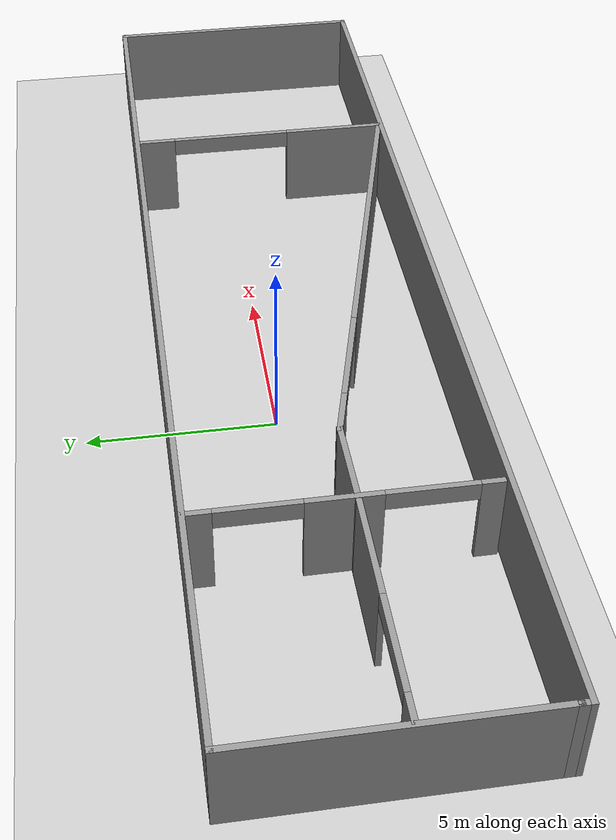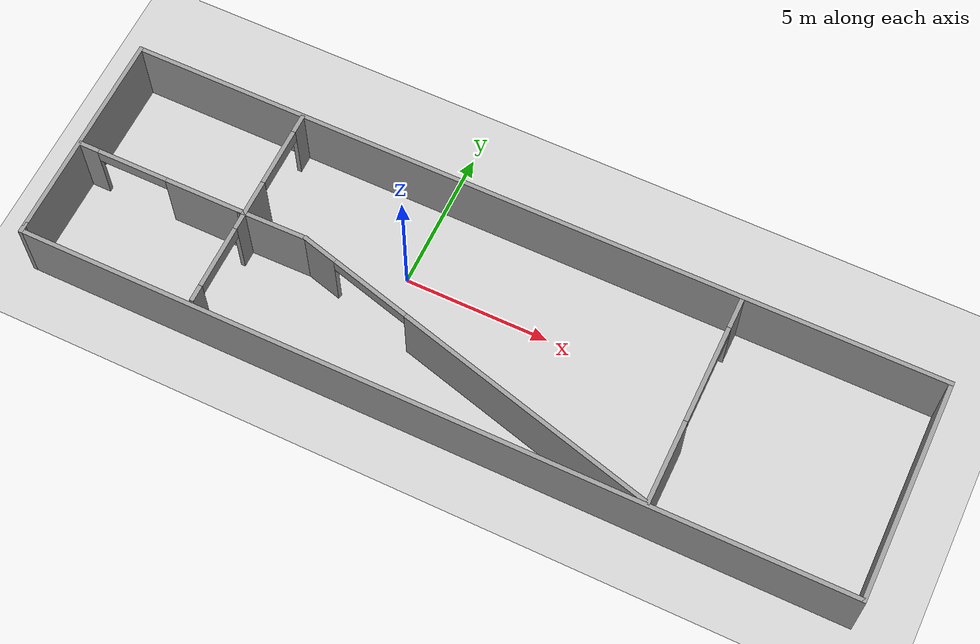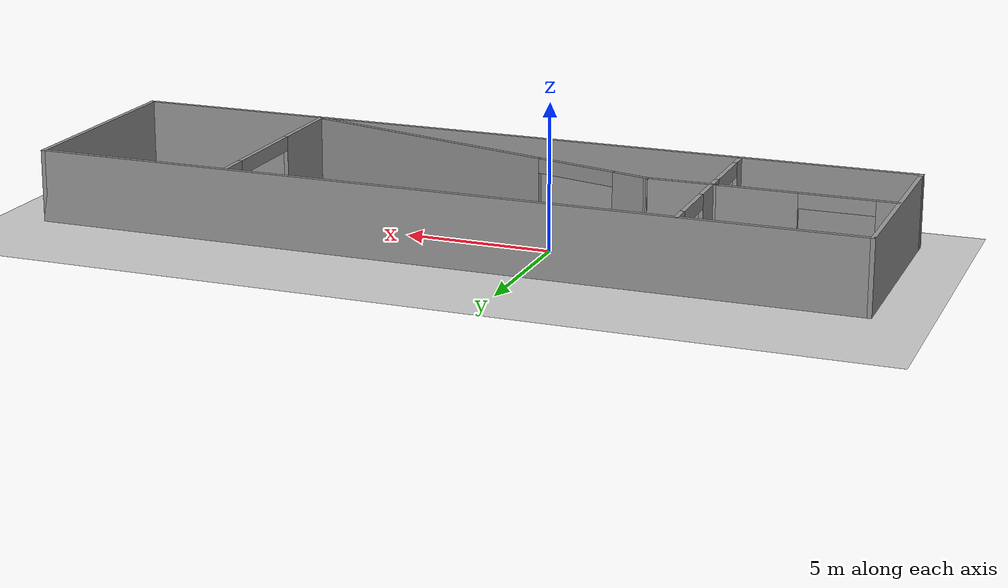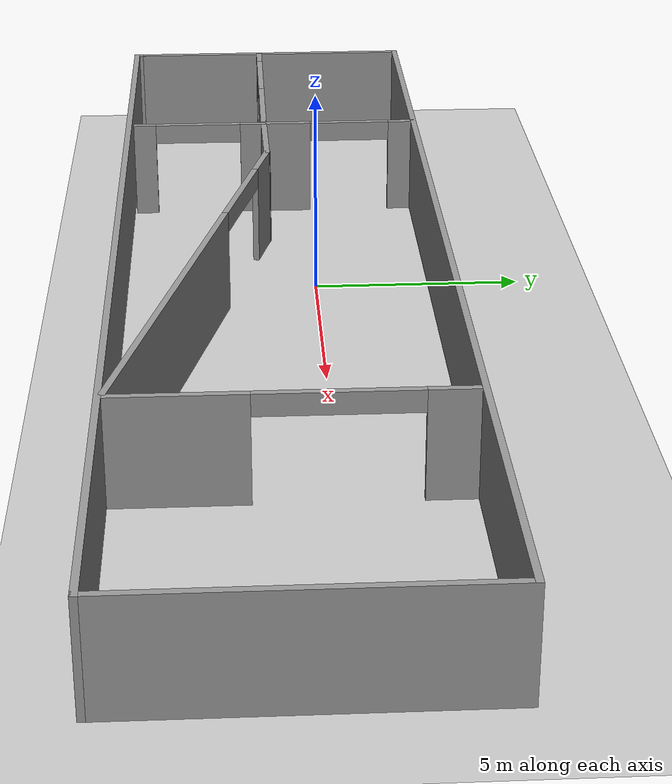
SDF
<sdf version="1.7">
 <world name="default">
  <light name="sun" type="directional">
   <pose>0 0 10 0 -0 0</pose>
   <diffuse>0.8 0.8 0.8 1</diffuse>
   <specular>0.2 0.2 0.2 1</specular>
   <attenuation>
    <range>1000</range>
    <constant>0.9</constant>
    <linear>0.01</linear>
    <quadratic>0.001</quadratic>
   </attenuation>
   <direction>-0.5 0.1 -0.9</direction>
   <spot><inner_angle>0</inner_angle><outer_angle>0</outer_angle><falloff>0</falloff></spot>
  </light>
  <model name="ground_plane">
   <static>1</static>
   <link name="link">
    <collision name="collision">
     <geometry><plane><normal>0 0 1</normal><size>100 100</size></plane></geometry>
     <surface>
      <contact><collide_bitmask>65535</collide_bitmask></contact>
      <friction><ode><mu>100</mu><mu2>50</mu2></ode></friction>
     </surface>
    </collision>
    <visual name="visual">
     <cast_shadows>0</cast_shadows>
     <geometry><plane><normal>0 0 1</normal><size>100 100</size></plane></geometry>
     <material>
      <script><uri>file://media/materials/scripts/gazebo.material</uri><name>Gazebo/Grey</name></script>
     </material>
    </visual>
   </link>
  </model>
  <gravity>0 0 -9.8</gravity>
  <magnetic_field>6e-06 2.3e-05 -4.2e-05</magnetic_field>
  <atmosphere type="adiabatic"/>
  <physics type="ode">
   <max_step_size>0.001</max_step_size>
   <real_time_factor>1</real_time_factor>
   <real_time_update_rate>1000</real_time_update_rate>
  </physics>
  <scene><ambient>0.4 0.4 0.4 1</ambient><background>0.7 0.7 0.7 1</background><shadows>1</shadows></scene>
  <spherical_coordinates>
   <surface_model>EARTH_WGS84</surface_model>
   <latitude_deg>0</latitude_deg>
   <longitude_deg>0</longitude_deg>
   <elevation>0</elevation>
   <heading_deg>0</heading_deg>
  </spherical_coordinates>
  <model name="world">
   <pose>2.98833 -0.945062 0 0 -0 0</pose>
   <link name="Wall_0">
    <collision name="Wall_0_Collision">
     <geometry><box><size>7.5 0.15 2.5</size></box></geometry>
     <pose>0 0 1.25 0 -0 0</pose>
    </collision>
    <visual name="Wall_0_Visual">
     <pose>0 0 1.25 0 -0 0</pose>
     <geometry><box><size>7.5 0.15 2.5</size></box></geometry>
     <material>
      <script><uri>file://media/materials/scripts/gazebo.material</uri><name>Gazebo/Grey</name></script>
      <ambient>1 1 1 1</ambient>
     </material>
     <meta><layer>0</layer></meta>
    </visual>
    <pose>-14.175 0.125 0 0 -0 1.5708</pose>
   </link>
   <link name="Wall_16">
    <pose>0.650154 -1.94124 0 0 -0 -0.261799</pose>
    <visual name="Wall_16_Visual_0">
     <pose>-6.20721 0 1.25 0 -0 0</pose>
     <geometry><box><size>1.33558 0.15 2.5</size></box></geometry>
     <material>
      <script><uri>file://media/materials/scripts/gazebo.material</uri><name>Gazebo/Grey</name></script>
      <ambient>1 1 1 1</ambient>
     </material>
     <meta><layer>0</layer></meta>
    </visual>
    <collision name="Wall_16_Collision_0">
     <geometry><box><size>1.33558 0.15 2.5</size></box></geometry>
     <pose>-6.20721 0 1.25 0 -0 0</pose>
    </collision>
    <visual name="Wall_16_Visual_1">
     <pose>2.13176 0 1.25 0 -0 0</pose>
     <geometry><box><size>9.48647 0.15 2.5</size></box></geometry>
     <material>
      <script><uri>file://media/materials/scripts/gazebo.material</uri><name>Gazebo/Grey</name></script>
      <ambient>1 1 1 1</ambient>
     </material>
     <meta><layer>0</layer></meta>
    </visual>
    <collision name="Wall_16_Collision_1">
     <geometry><box><size>9.48647 0.15 2.5</size></box></geometry>
     <pose>2.13176 0 1.25 0 -0 0</pose>
    </collision>
    <visual name="Wall_16_Visual_2">
     <pose>-4.07545 0 2.25 0 -0 0</pose>
     <geometry><box><size>2.92795 0.15 0.5</size></box></geometry>
     <material>
      <script><uri>file://media/materials/scripts/gazebo.material</uri><name>Gazebo/Grey</name></script>
      <ambient>1 1 1 1</ambient>
     </material>
     <meta><layer>0</layer></meta>
    </visual>
    <collision name="Wall_16_Collision_2">
     <geometry><box><size>2.92795 0.15 0.5</size></box></geometry>
     <pose>-4.07545 0 2.25 0 -0 0</pose>
    </collision>
   </link>
   <link name="Wall_19">
    <pose>7.3404 -0.025763 0 0 -0 -1.5708</pose>
    <visual name="Wall_19_Visual_0">
     <pose>-3.21098 0 1.25 0 -0 0</pose>
     <geometry><box><size>1.07804 0.15 2.5</size></box></geometry>
     <material>
      <script><uri>file://media/materials/scripts/gazebo.material</uri><name>Gazebo/Grey</name></script>
      <ambient>1 1 1 1</ambient>
     </material>
     <meta><layer>0</layer></meta>
    </visual>
    <collision name="Wall_19_Collision_0">
     <geometry><box><size>1.07804 0.15 2.5</size></box></geometry>
     <pose>-3.21098 0 1.25 0 -0 0</pose>
    </collision>
    <visual name="Wall_19_Visual_1">
     <pose>2.27381 0 1.25 0 -0 0</pose>
     <geometry><box><size>2.95239 0.15 2.5</size></box></geometry>
     <material>
      <script><uri>file://media/materials/scripts/gazebo.material</uri><name>Gazebo/Grey</name></script>
      <ambient>1 1 1 1</ambient>
     </material>
     <meta><layer>0</layer></meta>
    </visual>
    <collision name="Wall_19_Collision_1">
     <geometry><box><size>2.95239 0.15 2.5</size></box></geometry>
     <pose>2.27381 0 1.25 0 -0 0</pose>
    </collision>
    <visual name="Wall_19_Visual_2">
     <pose>-0.937175 0 2.25 0 -0 0</pose>
     <geometry><box><size>3.46958 0.15 0.5</size></box></geometry>
     <material>
      <script><uri>file://media/materials/scripts/gazebo.material</uri><name>Gazebo/Grey</name></script>
      <ambient>1 1 1 1</ambient>
     </material>
     <meta><layer>0</layer></meta>
    </visual>
    <collision name="Wall_19_Collision_2">
     <geometry><box><size>3.46958 0.15 0.5</size></box></geometry>
     <pose>-0.937175 0 2.25 0 -0 0</pose>
    </collision>
   </link>
   <link name="Wall_2">
    <collision name="Wall_2_Collision">
     <geometry><box><size>28.5 0.15 2.5</size></box></geometry>
     <pose>0 0 1.25 0 -0 0</pose>
    </collision>
    <visual name="Wall_2_Visual">
     <pose>0 0 1.25 0 -0 0</pose>
     <geometry><box><size>28.5 0.15 2.5</size></box></geometry>
     <material>
      <script><uri>file://media/materials/scripts/gazebo.material</uri><name>Gazebo/Grey</name></script>
      <ambient>1 1 1 1</ambient>
     </material>
     <meta><layer>0</layer></meta>
    </visual>
    <pose>0 3.8 0 0 -0 0</pose>
   </link>
   <link name="Wall_21">
    <collision name="Wall_21_Collision">
     <geometry><box><size>2.49492 0.15 2.5</size></box></geometry>
     <pose>0 0 1.25 0 -0 0</pose>
    </collision>
    <visual name="Wall_21_Visual">
     <pose>0 0 1.25 0 -0 0</pose>
     <geometry><box><size>2.49492 0.15 2.5</size></box></geometry>
     <material>
      <script><uri>file://media/materials/scripts/gazebo.material</uri><name>Gazebo/Grey</name></script>
      <ambient>1 1 1 1</ambient>
     </material>
     <meta><layer>0</layer></meta>
    </visual>
    <pose>-7.0905 -0.196569 0 0 -0 -3.12855</pose>
   </link>
   <link name="Wall_3">
    <collision name="Wall_3_Collision">
     <geometry><box><size>7.75 0.15 2.5</size></box></geometry>
     <pose>0 0 1.25 0 -0 0</pose>
    </collision>
    <visual name="Wall_3_Visual">
     <pose>0 0 1.25 0 -0 0</pose>
     <geometry><box><size>7.75 0.15 2.5</size></box></geometry>
     <material>
      <script><uri>file://media/materials/scripts/gazebo.material</uri><name>Gazebo/Grey</name></script>
      <ambient>1 1 1 1</ambient>
     </material>
     <meta><layer>0</layer></meta>
    </visual>
    <pose>14.175 0 0 0 -0 -1.5708</pose>
   </link>
   <link name="Wall_4">
    <collision name="Wall_4_Collision">
     <geometry><box><size>28.5 0.15 2.5</size></box></geometry>
     <pose>0 0 1.25 0 -0 0</pose>
    </collision>
    <visual name="Wall_4_Visual">
     <pose>0 0 1.25 0 -0 0</pose>
     <geometry><box><size>28.5 0.15 2.5</size></box></geometry>
     <material>
      <script><uri>file://media/materials/scripts/gazebo.material</uri><name>Gazebo/Grey</name></script>
      <ambient>1 1 1 1</ambient>
     </material>
     <meta><layer>0</layer></meta>
    </visual>
    <pose>0 -3.8 0 0 -0 3.14159</pose>
   </link>
   <link name="Wall_5">
    <collision name="Wall_5_Collision">
     <geometry><box><size>0.4 0.15 2.5</size></box></geometry>
     <pose>0 0 1.25 0 -0 0</pose>
    </collision>
    <visual name="Wall_5_Visual">
     <pose>0 0 1.25 0 -0 0</pose>
     <geometry><box><size>0.4 0.15 2.5</size></box></geometry>
     <material>
      <script><uri>file://media/materials/scripts/gazebo.material</uri><name>Gazebo/Grey</name></script>
      <ambient>1 1 1 1</ambient>
     </material>
     <meta><layer>0</layer></meta>
    </visual>
    <pose>-14.175 -3.675 0 0 -0 1.5708</pose>
   </link>
   <link name="Wall_7">
    <pose>-8.10122 0.076566 0 0 -0 -1.5708</pose>
    <visual name="Wall_7_Visual_0">
     <pose>-3.39785 0 1.25 0 -0 0</pose>
     <geometry><box><size>0.704303 0.15 2.5</size></box></geometry>
     <material>
      <script><uri>file://media/materials/scripts/gazebo.material</uri><name>Gazebo/Grey</name></script>
      <ambient>1 1 1 1</ambient>
     </material>
     <meta><layer>0</layer></meta>
    </visual>
    <collision name="Wall_7_Collision_0">
     <geometry><box><size>0.704303 0.15 2.5</size></box></geometry>
     <pose>-3.39785 0 1.25 0 -0 0</pose>
    </collision>
    <visual name="Wall_7_Visual_1">
     <pose>-0.017805 0 1.25 0 -0 0</pose>
     <geometry><box><size>1.86975 0.15 2.5</size></box></geometry>
     <material>
      <script><uri>file://media/materials/scripts/gazebo.material</uri><name>Gazebo/Grey</name></script>
      <ambient>1 1 1 1</ambient>
     </material>
     <meta><layer>0</layer></meta>
    </visual>
    <collision name="Wall_7_Collision_1">
     <geometry><box><size>1.86975 0.15 2.5</size></box></geometry>
     <pose>-0.017805 0 1.25 0 -0 0</pose>
    </collision>
    <visual name="Wall_7_Visual_2">
     <pose>3.45652 0 1.25 0 -0 0</pose>
     <geometry><box><size>0.586962 0.15 2.5</size></box></geometry>
     <material>
      <script><uri>file://media/materials/scripts/gazebo.material</uri><name>Gazebo/Grey</name></script>
      <ambient>1 1 1 1</ambient>
     </material>
     <meta><layer>0</layer></meta>
    </visual>
    <collision name="Wall_7_Collision_2">
     <geometry><box><size>0.586962 0.15 2.5</size></box></geometry>
     <pose>3.45652 0 1.25 0 -0 0</pose>
    </collision>
    <visual name="Wall_7_Visual_3">
     <pose>-1.99919 0 2.25 0 -0 0</pose>
     <geometry><box><size>2.09302 0.15 0.5</size></box></geometry>
     <material>
      <script><uri>file://media/materials/scripts/gazebo.material</uri><name>Gazebo/Grey</name></script>
      <ambient>1 1 1 1</ambient>
     </material>
     <meta><layer>0</layer></meta>
    </visual>
    <collision name="Wall_7_Collision_3">
     <geometry><box><size>2.09302 0.15 0.5</size></box></geometry>
     <pose>-1.99919 0 2.25 0 -0 0</pose>
    </collision>
    <visual name="Wall_7_Visual_4">
     <pose>2.04005 0 2.25 0 -0 0</pose>
     <geometry><box><size>2.24597 0.15 0.5</size></box></geometry>
     <material>
      <script><uri>file://media/materials/scripts/gazebo.material</uri><name>Gazebo/Grey</name></script>
      <ambient>1 1 1 1</ambient>
     </material>
     <meta><layer>0</layer></meta>
    </visual>
    <collision name="Wall_7_Collision_4">
     <geometry><box><size>2.24597 0.15 0.5</size></box></geometry>
     <pose>2.04005 0 2.25 0 -0 0</pose>
    </collision>
   </link>
   <link name="Wall_9">
    <pose>-11.1879 -0.211864 0 0 -0 0</pose>
    <visual name="Wall_9_Visual_0">
     <pose>-2.62447 0 1.25 0 -0 0</pose>
     <geometry><box><size>0.751056 0.15 2.5</size></box></geometry>
     <material>
      <script><uri>file://media/materials/scripts/gazebo.material</uri><name>Gazebo/Grey</name></script>
      <ambient>1 1 1 1</ambient>
     </material>
     <meta><layer>0</layer></meta>
    </visual>
    <collision name="Wall_9_Collision_0">
     <geometry><box><size>0.751056 0.15 2.5</size></box></geometry>
     <pose>-2.62447 0 1.25 0 -0 0</pose>
    </collision>
    <visual name="Wall_9_Visual_1">
     <pose>1.62087 0 1.25 0 -0 0</pose>
     <geometry><box><size>2.75825 0.15 2.5</size></box></geometry>
     <material>
      <script><uri>file://media/materials/scripts/gazebo.material</uri><name>Gazebo/Grey</name></script>
      <ambient>1 1 1 1</ambient>
     </material>
     <meta><layer>0</layer></meta>
    </visual>
    <collision name="Wall_9_Collision_1">
     <geometry><box><size>2.75825 0.15 2.5</size></box></geometry>
     <pose>1.62087 0 1.25 0 -0 0</pose>
    </collision>
    <visual name="Wall_9_Visual_2">
     <pose>-1.0036 0 2.25 0 -0 0</pose>
     <geometry><box><size>2.49069 0.15 0.5</size></box></geometry>
     <material>
      <script><uri>file://media/materials/scripts/gazebo.material</uri><name>Gazebo/Grey</name></script>
      <ambient>1 1 1 1</ambient>
     </material>
     <meta><layer>0</layer></meta>
    </visual>
    <collision name="Wall_9_Collision_2">
     <geometry><box><size>2.49069 0.15 0.5</size></box></geometry>
     <pose>-1.0036 0 2.25 0 -0 0</pose>
    </collision>
   </link>
   <static>1</static>
  </model>
 </world>
</sdf>
